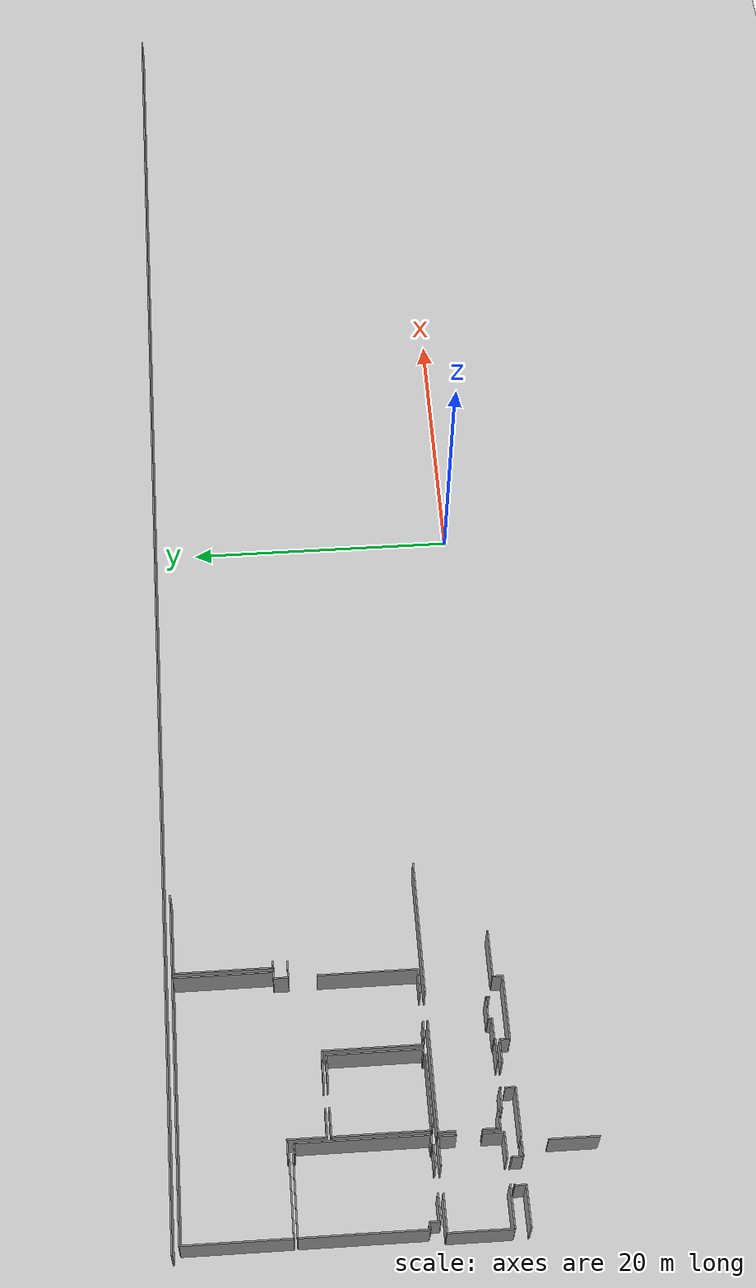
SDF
<sdf version="1.6">
 <world name="default">
  <model name="ground_plane">
   <static>1</static>
   <link name="link">
    <collision name="collision">
     <geometry><plane><normal>0 0 1</normal><size>100 100</size></plane></geometry>
     <surface><friction><ode><mu>100</mu><mu2>50</mu2></ode></friction></surface>
    </collision>
    <visual name="visual">
     <cast_shadows>0</cast_shadows>
     <geometry><plane><normal>0 0 1</normal><size>100 100</size></plane></geometry>
     <material>
      <script><uri>file://media/materials/scripts/gazebo.material</uri><name>Gazebo/Grey</name></script>
     </material>
    </visual>
   </link>
  </model>
  <model name="50057023">
   <static>1</static>
   <link name="Wall_0">
    <collision name="Wall_0_Collision">
     <geometry><box><size>0.727358910242 0.1 2.5</size></box></geometry>
     <pose>0.363679455121 0 1.25 0 0 0</pose>
    </collision>
    <visual name="Wall_0_Visual">
     <pose>0.363679455121 0 1.25 0 0 0</pose>
     <geometry><box><size>0.727358910242 0.1 2.5</size></box></geometry>
     <material>
      <script><uri>file://media/materials/scripts/gazebo.material</uri><name>Gazebo/Grey</name></script>
      <ambient>1 1 1 1</ambient>
     </material>
    </visual>
    <pose>1.07209078615 -17.7010946504 0 0 0 1.57079632679</pose>
   </link>
   <link name="Wall_1">
    <collision name="Wall_1_Collision">
     <geometry><box><size>0.495932290604 0.1 2.5</size></box></geometry>
     <pose>0.247966145302 0 1.25 0 0 0</pose>
    </collision>
    <visual name="Wall_1_Visual">
     <pose>0.247966145302 0 1.25 0 0 0</pose>
     <geometry><box><size>0.495932290604 0.1 2.5</size></box></geometry>
     <material>
      <script><uri>file://media/materials/scripts/gazebo.material</uri><name>Gazebo/Grey</name></script>
      <ambient>1 1 1 1</ambient>
     </material>
    </visual>
    <pose>1.07209078615 -16.9737357402 0 0 0 3.14159265359</pose>
   </link>
   <link name="Wall_2">
    <collision name="Wall_2_Collision">
     <geometry><box><size>8.71259120503 0.1 2.5</size></box></geometry>
     <pose>4.35629560251 0 1.25 0 0 0</pose>
    </collision>
    <visual name="Wall_2_Visual">
     <pose>4.35629560251 0 1.25 0 0 0</pose>
     <geometry><box><size>8.71259120503 0.1 2.5</size></box></geometry>
     <material>
      <script><uri>file://media/materials/scripts/gazebo.material</uri><name>Gazebo/Grey</name></script>
      <ambient>1 1 1 1</ambient>
     </material>
    </visual>
    <pose>0.57615849555 -16.9737357402 0 0 0 1.57079632679</pose>
   </link>
   <link name="Wall_3">
    <collision name="Wall_3_Collision">
     <geometry><box><size>5.60645561134 0.1 2.5</size></box></geometry>
     <pose>2.80322780567 0 1.25 0 0 0</pose>
    </collision>
    <visual name="Wall_3_Visual">
     <pose>2.80322780567 0 1.25 0 0 0</pose>
     <geometry><box><size>5.60645561134 0.1 2.5</size></box></geometry>
     <material>
      <script><uri>file://media/materials/scripts/gazebo.material</uri><name>Gazebo/Grey</name></script>
      <ambient>1 1 1 1</ambient>
     </material>
    </visual>
    <pose>0.57615849555 -8.26114453518 0 0 0 0.0</pose>
   </link>
   <link name="Wall_4">
    <collision name="Wall_4_Collision">
     <geometry><box><size>0.108362409524 0.1 2.5</size></box></geometry>
     <pose>0.0541812047619 0 1.25 0 0 0</pose>
    </collision>
    <visual name="Wall_4_Visual">
     <pose>0.0541812047619 0 1.25 0 0 0</pose>
     <geometry><box><size>0.108362409524 0.1 2.5</size></box></geometry>
     <material>
      <script><uri>file://media/materials/scripts/gazebo.material</uri><name>Gazebo/Grey</name></script>
      <ambient>1 1 1 1</ambient>
     </material>
    </visual>
    <pose>6.18261410688 -8.26114453518 0 0 0 -1.57079632679</pose>
   </link>
   <link name="Wall_5">
    <collision name="Wall_5_Collision">
     <geometry><box><size>0.725077596357 0.1 2.5</size></box></geometry>
     <pose>0.362538798178 0 1.25 0 0 0</pose>
    </collision>
    <visual name="Wall_5_Visual">
     <pose>0.362538798178 0 1.25 0 0 0</pose>
     <geometry><box><size>0.725077596357 0.1 2.5</size></box></geometry>
     <material>
      <script><uri>file://media/materials/scripts/gazebo.material</uri><name>Gazebo/Grey</name></script>
      <ambient>1 1 1 1</ambient>
     </material>
    </visual>
    <pose>6.18261410688 -8.3695069447 0 0 0 0.0</pose>
   </link>
   <link name="Wall_6">
    <collision name="Wall_6_Collision">
     <geometry><box><size>9.20839675597 0.1 2.5</size></box></geometry>
     <pose>4.60419837799 0 1.25 0 0 0</pose>
    </collision>
    <visual name="Wall_6_Visual">
     <pose>4.60419837799 0 1.25 0 0 0</pose>
     <geometry><box><size>9.20839675597 0.1 2.5</size></box></geometry>
     <material>
      <script><uri>file://media/materials/scripts/gazebo.material</uri><name>Gazebo/Grey</name></script>
      <ambient>1 1 1 1</ambient>
     </material>
    </visual>
    <pose>6.90769170324 -8.3695069447 0 0 0 -1.57079632679</pose>
   </link>
   <link name="Wall_7">
    <collision name="Wall_7_Collision">
     <geometry><box><size>0.708347961202 0.1 2.5</size></box></geometry>
     <pose>0.354173980601 0 1.25 0 0 0</pose>
    </collision>
    <visual name="Wall_7_Visual">
     <pose>0.354173980601 0 1.25 0 0 0</pose>
     <geometry><box><size>0.708347961202 0.1 2.5</size></box></geometry>
     <material>
      <script><uri>file://media/materials/scripts/gazebo.material</uri><name>Gazebo/Grey</name></script>
      <ambient>1 1 1 1</ambient>
     </material>
    </visual>
    <pose>6.90769170324 -17.5779037007 0 0 0 3.14159265359</pose>
   </link>
   <link name="Wall_8">
    <collision name="Wall_8_Collision">
     <geometry><box><size>0.108362409524 0.1 2.5</size></box></geometry>
     <pose>0.0541812047619 0 1.25 0 0 0</pose>
    </collision>
    <visual name="Wall_8_Visual">
     <pose>0.0541812047619 0 1.25 0 0 0</pose>
     <geometry><box><size>0.108362409524 0.1 2.5</size></box></geometry>
     <material>
      <script><uri>file://media/materials/scripts/gazebo.material</uri><name>Gazebo/Grey</name></script>
      <ambient>1 1 1 1</ambient>
     </material>
    </visual>
    <pose>6.19934374204 -17.5779037007 0 0 0 -1.57079632679</pose>
   </link>
   <link name="Wall_9">
    <collision name="Wall_9_Collision">
     <geometry><box><size>1.47499616613 0.1 2.5</size></box></geometry>
     <pose>0.737498083063 0 1.25 0 0 0</pose>
    </collision>
    <visual name="Wall_9_Visual">
     <pose>0.737498083063 0 1.25 0 0 0</pose>
     <geometry><box><size>1.47499616613 0.1 2.5</size></box></geometry>
     <material>
      <script><uri>file://media/materials/scripts/gazebo.material</uri><name>Gazebo/Grey</name></script>
      <ambient>1 1 1 1</ambient>
     </material>
    </visual>
    <pose>6.19934374204 -17.6862661102 0 0 0 3.14159265359</pose>
   </link>
   <link name="Wall_10">
    <collision name="Wall_10_Collision">
     <geometry><box><size>1.90115273435 0.1 2.5</size></box></geometry>
     <pose>0.950576367176 0 1.25 0 0 0</pose>
    </collision>
    <visual name="Wall_10_Visual">
     <pose>0.950576367176 0 1.25 0 0 0</pose>
     <geometry><box><size>1.90115273435 0.1 2.5</size></box></geometry>
     <material>
      <script><uri>file://media/materials/scripts/gazebo.material</uri><name>Gazebo/Grey</name></script>
      <ambient>1 1 1 1</ambient>
     </material>
    </visual>
    <pose>2.97318569008 -17.6862661102 0 0 0 -3.13379281177</pose>
   </link>
   <link name="Wall_11">
    <collision name="Wall_11_Collision">
     <geometry><box><size>6.70021887939 0.1 2.5</size></box></geometry>
     <pose>3.3501094397 0 1.25 0 0 0</pose>
    </collision>
    <visual name="Wall_11_Visual">
     <pose>3.3501094397 0 1.25 0 0 0</pose>
     <geometry><box><size>6.70021887939 0.1 2.5</size></box></geometry>
     <material>
      <script><uri>file://media/materials/scripts/gazebo.material</uri><name>Gazebo/Grey</name></script>
      <ambient>1 1 1 1</ambient>
     </material>
    </visual>
    <pose>7.1862654765 -17.598689005 0 0 0 1.57079632679</pose>
   </link>
   <link name="Wall_12">
    <collision name="Wall_12_Collision">
     <geometry><box><size>2.01123166869 0.1 2.5</size></box></geometry>
     <pose>1.00561583435 0 1.25 0 0 0</pose>
    </collision>
    <visual name="Wall_12_Visual">
     <pose>1.00561583435 0 1.25 0 0 0</pose>
     <geometry><box><size>2.01123166869 0.1 2.5</size></box></geometry>
     <material>
      <script><uri>file://media/materials/scripts/gazebo.material</uri><name>Gazebo/Grey</name></script>
      <ambient>1 1 1 1</ambient>
     </material>
    </visual>
    <pose>7.1862654765 -10.8984701256 0 0 0 0.0</pose>
   </link>
   <link name="Wall_13">
    <collision name="Wall_13_Collision">
     <geometry><box><size>1.97219585333 0.1 2.5</size></box></geometry>
     <pose>0.986097926666 0 1.25 0 0 0</pose>
    </collision>
    <visual name="Wall_13_Visual">
     <pose>0.986097926666 0 1.25 0 0 0</pose>
     <geometry><box><size>1.97219585333 0.1 2.5</size></box></geometry>
     <material>
      <script><uri>file://media/materials/scripts/gazebo.material</uri><name>Gazebo/Grey</name></script>
      <ambient>1 1 1 1</ambient>
     </material>
    </visual>
    <pose>10.9546157951 -10.8984701256 0 0 0 0.0</pose>
   </link>
   <link name="Wall_14">
    <collision name="Wall_14_Collision">
     <geometry><box><size>6.6829822856 0.1 2.5</size></box></geometry>
     <pose>3.3414911428 0 1.25 0 0 0</pose>
    </collision>
    <visual name="Wall_14_Visual">
     <pose>3.3414911428 0 1.25 0 0 0</pose>
     <geometry><box><size>6.6829822856 0.1 2.5</size></box></geometry>
     <material>
      <script><uri>file://media/materials/scripts/gazebo.material</uri><name>Gazebo/Grey</name></script>
      <ambient>1 1 1 1</ambient>
     </material>
    </visual>
    <pose>12.9268116484 -10.8984701256 0 0 0 -1.57079632679</pose>
   </link>
   <link name="Wall_15">
    <collision name="Wall_15_Collision">
     <geometry><box><size>0.442321414313 0.1 2.5</size></box></geometry>
     <pose>0.221160707157 0 1.25 0 0 0</pose>
    </collision>
    <visual name="Wall_15_Visual">
     <pose>0.221160707157 0 1.25 0 0 0</pose>
     <geometry><box><size>0.442321414313 0.1 2.5</size></box></geometry>
     <material>
      <script><uri>file://media/materials/scripts/gazebo.material</uri><name>Gazebo/Grey</name></script>
      <ambient>1 1 1 1</ambient>
     </material>
    </visual>
    <pose>12.9268116484 -17.5814524112 0 0 0 3.14159265359</pose>
   </link>
   <link name="Wall_16">
    <collision name="Wall_16_Collision">
     <geometry><box><size>0.171605499994 0.1 2.5</size></box></geometry>
     <pose>0.0858027499971 0 1.25 0 0 0</pose>
    </collision>
    <visual name="Wall_16_Visual">
     <pose>0.0858027499971 0 1.25 0 0 0</pose>
     <geometry><box><size>0.171605499994 0.1 2.5</size></box></geometry>
     <material>
      <script><uri>file://media/materials/scripts/gazebo.material</uri><name>Gazebo/Grey</name></script>
      <ambient>1 1 1 1</ambient>
     </material>
    </visual>
    <pose>12.4844902341 -17.5814524112 0 0 0 -1.57079632679</pose>
   </link>
   <link name="Wall_17">
    <collision name="Wall_17_Collision">
     <geometry><box><size>5.02066490161 0.1 2.5</size></box></geometry>
     <pose>2.5103324508 0 1.25 0 0 0</pose>
    </collision>
    <visual name="Wall_17_Visual">
     <pose>2.5103324508 0 1.25 0 0 0</pose>
     <geometry><box><size>5.02066490161 0.1 2.5</size></box></geometry>
     <material>
      <script><uri>file://media/materials/scripts/gazebo.material</uri><name>Gazebo/Grey</name></script>
      <ambient>1 1 1 1</ambient>
     </material>
    </visual>
    <pose>12.4844902341 -17.7530579112 0 0 0 3.14159265359</pose>
   </link>
   <link name="Wall_18">
    <collision name="Wall_18_Collision">
     <geometry><box><size>0.15018649741 0.1 2.5</size></box></geometry>
     <pose>0.075093248705 0 1.25 0 0 0</pose>
    </collision>
    <visual name="Wall_18_Visual">
     <pose>0.075093248705 0 1.25 0 0 0</pose>
     <geometry><box><size>0.15018649741 0.1 2.5</size></box></geometry>
     <material>
      <script><uri>file://media/materials/scripts/gazebo.material</uri><name>Gazebo/Grey</name></script>
      <ambient>1 1 1 1</ambient>
     </material>
    </visual>
    <pose>7.46382533247 -17.7530579112 0 0 0 1.57079632679</pose>
   </link>
   <link name="Wall_19">
    <collision name="Wall_19_Collision">
     <geometry><box><size>0.277591365484 0.1 2.5</size></box></geometry>
     <pose>0.138795682742 0 1.25 0 0 0</pose>
    </collision>
    <visual name="Wall_19_Visual">
     <pose>0.138795682742 0 1.25 0 0 0</pose>
     <geometry><box><size>0.277591365484 0.1 2.5</size></box></geometry>
     <material>
      <script><uri>file://media/materials/scripts/gazebo.material</uri><name>Gazebo/Grey</name></script>
      <ambient>1 1 1 1</ambient>
     </material>
    </visual>
    <pose>7.46382533247 -17.6028714137 0 0 0 3.12652530077</pose>
   </link>
   <link name="Wall_20">
    <collision name="Wall_20_Collision">
     <geometry><box><size>7.51338053963 0.1 2.5</size></box></geometry>
     <pose>3.75669026982 0 1.25 0 0 0</pose>
    </collision>
    <visual name="Wall_20_Visual">
     <pose>3.75669026982 0 1.25 0 0 0</pose>
     <geometry><box><size>7.51338053963 0.1 2.5</size></box></geometry>
     <material>
      <script><uri>file://media/materials/scripts/gazebo.material</uri><name>Gazebo/Grey</name></script>
      <ambient>1 1 1 1</ambient>
     </material>
    </visual>
    <pose>0.570201731517 -8.01096044582 0 0 0 1.57079632679</pose>
   </link>
   <link name="Wall_21">
    <collision name="Wall_21_Collision">
     <geometry><box><size>18.6421366279 0.1 2.5</size></box></geometry>
     <pose>9.32106831394 0 1.25 0 0 0</pose>
    </collision>
    <visual name="Wall_21_Visual">
     <pose>9.32106831394 0 1.25 0 0 0</pose>
     <geometry><box><size>18.6421366279 0.1 2.5</size></box></geometry>
     <material>
      <script><uri>file://media/materials/scripts/gazebo.material</uri><name>Gazebo/Grey</name></script>
      <ambient>1 1 1 1</ambient>
     </material>
    </visual>
    <pose>0.570201731517 -0.497579906187 0 0 0 0.0</pose>
   </link>
   <link name="Wall_22">
    <collision name="Wall_22_Collision">
     <geometry><box><size>7.08639462421 0.1 2.5</size></box></geometry>
     <pose>3.54319731211 0 1.25 0 0 0</pose>
    </collision>
    <visual name="Wall_22_Visual">
     <pose>3.54319731211 0 1.25 0 0 0</pose>
     <geometry><box><size>7.08639462421 0.1 2.5</size></box></geometry>
     <material>
      <script><uri>file://media/materials/scripts/gazebo.material</uri><name>Gazebo/Grey</name></script>
      <ambient>1 1 1 1</ambient>
     </material>
    </visual>
    <pose>19.2123383594 -0.497579906187 0 0 0 -1.57079632679</pose>
   </link>
   <link name="Wall_23">
    <collision name="Wall_23_Collision">
     <geometry><box><size>0.473879589718 0.1 2.5</size></box></geometry>
     <pose>0.236939794859 0 1.25 0 0 0</pose>
    </collision>
    <visual name="Wall_23_Visual">
     <pose>0.236939794859 0 1.25 0 0 0</pose>
     <geometry><box><size>0.473879589718 0.1 2.5</size></box></geometry>
     <material>
      <script><uri>file://media/materials/scripts/gazebo.material</uri><name>Gazebo/Grey</name></script>
      <ambient>1 1 1 1</ambient>
     </material>
    </visual>
    <pose>19.2123383594 -7.5839745304 0 0 0 3.14159265359</pose>
   </link>
   <link name="Wall_24">
    <collision name="Wall_24_Collision">
     <geometry><box><size>1.02494363254 0.1 2.5</size></box></geometry>
     <pose>0.512471816268 0 1.25 0 0 0</pose>
    </collision>
    <visual name="Wall_24_Visual">
     <pose>0.512471816268 0 1.25 0 0 0</pose>
     <geometry><box><size>1.02494363254 0.1 2.5</size></box></geometry>
     <material>
      <script><uri>file://media/materials/scripts/gazebo.material</uri><name>Gazebo/Grey</name></script>
      <ambient>1 1 1 1</ambient>
     </material>
    </visual>
    <pose>18.7384587697 -7.5839745304 0 0 0 -1.57079632679</pose>
   </link>
   <link name="Wall_25">
    <collision name="Wall_25_Collision">
     <geometry><box><size>1.23431755129 0.1 2.5</size></box></geometry>
     <pose>0.617158775644 0 1.25 0 0 0</pose>
    </collision>
    <visual name="Wall_25_Visual">
     <pose>0.617158775644 0 1.25 0 0 0</pose>
     <geometry><box><size>1.23431755129 0.1 2.5</size></box></geometry>
     <material>
      <script><uri>file://media/materials/scripts/gazebo.material</uri><name>Gazebo/Grey</name></script>
      <ambient>1 1 1 1</ambient>
     </material>
    </visual>
    <pose>18.7384587697 -8.60891816293 0 0 0 0.0</pose>
   </link>
   <link name="Wall_31">
    <collision name="Wall_31_Collision">
     <geometry><box><size>7.12238868772 0.1 2.5</size></box></geometry>
     <pose>3.56119434386 0 1.25 0 0 0</pose>
    </collision>
    <visual name="Wall_31_Visual">
     <pose>3.56119434386 0 1.25 0 0 0</pose>
     <geometry><box><size>7.12238868772 0.1 2.5</size></box></geometry>
     <material>
      <script><uri>file://media/materials/scripts/gazebo.material</uri><name>Gazebo/Grey</name></script>
      <ambient>1 1 1 1</ambient>
     </material>
    </visual>
    <pose>18.765961276 -10.6068421673 0 0 0 -1.57079632679</pose>
   </link>
   <link name="Wall_32">
    <collision name="Wall_32_Collision">
     <geometry><box><size>1.70262059596 0.1 2.5</size></box></geometry>
     <pose>0.851310297978 0 1.25 0 0 0</pose>
    </collision>
    <visual name="Wall_32_Visual">
     <pose>0.851310297978 0 1.25 0 0 0</pose>
     <geometry><box><size>1.70262059596 0.1 2.5</size></box></geometry>
     <material>
      <script><uri>file://media/materials/scripts/gazebo.material</uri><name>Gazebo/Grey</name></script>
      <ambient>1 1 1 1</ambient>
     </material>
    </visual>
    <pose>18.765961276 -17.729230855 0 0 0 3.14159265359</pose>
   </link>
   <link name="Wall_33">
    <collision name="Wall_33_Collision">
     <geometry><box><size>1.21974249036 0.1 2.5</size></box></geometry>
     <pose>0.609871245179 0 1.25 0 0 0</pose>
    </collision>
    <visual name="Wall_33_Visual">
     <pose>0.609871245179 0 1.25 0 0 0</pose>
     <geometry><box><size>1.21974249036 0.1 2.5</size></box></geometry>
     <material>
      <script><uri>file://media/materials/scripts/gazebo.material</uri><name>Gazebo/Grey</name></script>
      <ambient>1 1 1 1</ambient>
     </material>
    </visual>
    <pose>14.9573077454 -17.729230855 0 0 0 3.14159265359</pose>
   </link>
   <link name="Wall_34">
    <collision name="Wall_34_Collision">
     <geometry><box><size>0.128640755166 0.1 2.5</size></box></geometry>
     <pose>0.0643203775828 0 1.25 0 0 0</pose>
    </collision>
    <visual name="Wall_34_Visual">
     <pose>0.0643203775828 0 1.25 0 0 0</pose>
     <geometry><box><size>0.128640755166 0.1 2.5</size></box></geometry>
     <material>
      <script><uri>file://media/materials/scripts/gazebo.material</uri><name>Gazebo/Grey</name></script>
      <ambient>1 1 1 1</ambient>
     </material>
    </visual>
    <pose>13.7375652551 -17.729230855 0 0 0 1.57079632679</pose>
   </link>
   <link name="Wall_35">
    <collision name="Wall_35_Collision">
     <geometry><box><size>0.504930806482 0.1 2.5</size></box></geometry>
     <pose>0.252465403241 0 1.25 0 0 0</pose>
    </collision>
    <visual name="Wall_35_Visual">
     <pose>0.252465403241 0 1.25 0 0 0</pose>
     <geometry><box><size>0.504930806482 0.1 2.5</size></box></geometry>
     <material>
      <script><uri>file://media/materials/scripts/gazebo.material</uri><name>Gazebo/Grey</name></script>
      <ambient>1 1 1 1</ambient>
     </material>
    </visual>
    <pose>13.7375652551 -17.6005900999 0 0 0 3.14159265359</pose>
   </link>
   <link name="Wall_36">
    <collision name="Wall_36_Collision">
     <geometry><box><size>6.98107396653 0.1 2.5</size></box></geometry>
     <pose>3.49053698327 0 1.25 0 0 0</pose>
    </collision>
    <visual name="Wall_36_Visual">
     <pose>3.49053698327 0 1.25 0 0 0</pose>
     <geometry><box><size>6.98107396653 0.1 2.5</size></box></geometry>
     <material>
      <script><uri>file://media/materials/scripts/gazebo.material</uri><name>Gazebo/Grey</name></script>
      <ambient>1 1 1 1</ambient>
     </material>
    </visual>
    <pose>13.2326344486 -17.6005900999 0 0 0 1.57079632679</pose>
   </link>
   <link name="Wall_37">
    <collision name="Wall_37_Collision">
     <geometry><box><size>2.28156736403 0.1 2.5</size></box></geometry>
     <pose>1.14078368202 0 1.25 0 0 0</pose>
    </collision>
    <visual name="Wall_37_Visual">
     <pose>1.14078368202 0 1.25 0 0 0</pose>
     <geometry><box><size>2.28156736403 0.1 2.5</size></box></geometry>
     <material>
      <script><uri>file://media/materials/scripts/gazebo.material</uri><name>Gazebo/Grey</name></script>
      <ambient>1 1 1 1</ambient>
     </material>
    </visual>
    <pose>13.2326344486 -10.6195161333 0 0 0 3.14159265359</pose>
   </link>
   <link name="Wall_38">
    <collision name="Wall_38_Collision">
     <geometry><box><size>2.02897522113 0.1 2.5</size></box></geometry>
     <pose>1.01448761056 0 1.25 0 0 0</pose>
    </collision>
    <visual name="Wall_38_Visual">
     <pose>1.01448761056 0 1.25 0 0 0</pose>
     <geometry><box><size>2.02897522113 0.1 2.5</size></box></geometry>
     <material>
      <script><uri>file://media/materials/scripts/gazebo.material</uri><name>Gazebo/Grey</name></script>
      <ambient>1 1 1 1</ambient>
     </material>
    </visual>
    <pose>9.20915719393 -10.6195161333 0 0 0 3.14159265359</pose>
   </link>
   <link name="Wall_39">
    <collision name="Wall_39_Collision">
     <geometry><box><size>2.71374960552 0.1 2.5</size></box></geometry>
     <pose>1.35687480276 0 1.25 0 0 0</pose>
    </collision>
    <visual name="Wall_39_Visual">
     <pose>1.35687480276 0 1.25 0 0 0</pose>
     <geometry><box><size>2.71374960552 0.1 2.5</size></box></geometry>
     <material>
      <script><uri>file://media/materials/scripts/gazebo.material</uri><name>Gazebo/Grey</name></script>
      <ambient>1 1 1 1</ambient>
     </material>
    </visual>
    <pose>7.1801819728 -10.6195161333 0 0 0 1.57079632679</pose>
   </link>
   <link name="Wall_40">
    <collision name="Wall_40_Collision">
     <geometry><box><size>0.982739325669 0.1 2.5</size></box></geometry>
     <pose>0.491369662834 0 1.25 0 0 0</pose>
    </collision>
    <visual name="Wall_40_Visual">
     <pose>0.491369662834 0 1.25 0 0 0</pose>
     <geometry><box><size>0.982739325669 0.1 2.5</size></box></geometry>
     <material>
      <script><uri>file://media/materials/scripts/gazebo.material</uri><name>Gazebo/Grey</name></script>
      <ambient>1 1 1 1</ambient>
     </material>
    </visual>
    <pose>7.1801819728 -7.9057665278 0 0 0 3.14159265359</pose>
   </link>
   <link name="Wall_41">
    <collision name="Wall_41_Collision">
     <geometry><box><size>0.0941675675744 0.1 2.5</size></box></geometry>
     <pose>0.0470837837872 0 1.25 0 0 0</pose>
    </collision>
    <visual name="Wall_41_Visual">
     <pose>0.0470837837872 0 1.25 0 0 0</pose>
     <geometry><box><size>0.0941675675744 0.1 2.5</size></box></geometry>
     <material>
      <script><uri>file://media/materials/scripts/gazebo.material</uri><name>Gazebo/Grey</name></script>
      <ambient>1 1 1 1</ambient>
     </material>
    </visual>
    <pose>6.19744264714 -7.9057665278 0 0 0 -1.57079632679</pose>
   </link>
   <link name="Wall_42">
    <collision name="Wall_42_Collision">
     <geometry><box><size>5.62725171845 0.1 2.5</size></box></geometry>
     <pose>2.81362585923 0 1.25 0 0 0</pose>
    </collision>
    <visual name="Wall_42_Visual">
     <pose>2.81362585923 0 1.25 0 0 0</pose>
     <geometry><box><size>5.62725171845 0.1 2.5</size></box></geometry>
     <material>
      <script><uri>file://media/materials/scripts/gazebo.material</uri><name>Gazebo/Grey</name></script>
      <ambient>1 1 1 1</ambient>
     </material>
    </visual>
    <pose>6.19744264714 -7.99993409538 0 0 0 -3.13963319664</pose>
   </link>
   <link name="Wall_43">
    <collision name="Wall_43_Collision">
     <geometry><box><size>7.09197116926 0.1 2.5</size></box></geometry>
     <pose>3.54598558463 0 1.25 0 0 0</pose>
    </collision>
    <visual name="Wall_43_Visual">
     <pose>3.54598558463 0 1.25 0 0 0</pose>
     <geometry><box><size>7.09197116926 0.1 2.5</size></box></geometry>
     <material>
      <script><uri>file://media/materials/scripts/gazebo.material</uri><name>Gazebo/Grey</name></script>
      <ambient>1 1 1 1</ambient>
     </material>
    </visual>
    <pose>19.5171472423 -7.59487414118 0 0 0 1.57079632679</pose>
   </link>
   <link name="Wall_44">
    <collision name="Wall_44_Collision">
     <geometry><box><size>5.98147826605 0.1 2.5</size></box></geometry>
     <pose>2.99073913302 0 1.25 0 0 0</pose>
    </collision>
    <visual name="Wall_44_Visual">
     <pose>2.99073913302 0 1.25 0 0 0</pose>
     <geometry><box><size>5.98147826605 0.1 2.5</size></box></geometry>
     <material>
      <script><uri>file://media/materials/scripts/gazebo.material</uri><name>Gazebo/Grey</name></script>
      <ambient>1 1 1 1</ambient>
     </material>
    </visual>
    <pose>19.5171472423 -0.502902971918 0 0 0 0.0</pose>
   </link>
   <link name="Wall_47">
    <collision name="Wall_47_Collision">
     <geometry><box><size>0.490971580892 0.1 2.5</size></box></geometry>
     <pose>0.245485790446 0 1.25 0 0 0</pose>
    </collision>
    <visual name="Wall_47_Visual">
     <pose>0.245485790446 0 1.25 0 0 0</pose>
     <geometry><box><size>0.490971580892 0.1 2.5</size></box></geometry>
     <material>
      <script><uri>file://media/materials/scripts/gazebo.material</uri><name>Gazebo/Grey</name></script>
      <ambient>1 1 1 1</ambient>
     </material>
    </visual>
    <pose>20.0078832069 -7.57966538195 0 0 0 -3.11061083473</pose>
   </link>
   <link name="Wall_110">
    <collision name="Wall_110_Collision">
     <geometry><box><size>1.23431755129 0.1 2.5</size></box></geometry>
     <pose>0.617158775644 0 1.25 0 0 0</pose>
    </collision>
    <visual name="Wall_110_Visual">
     <pose>0.617158775644 0 1.25 0 0 0</pose>
     <geometry><box><size>1.23431755129 0.1 2.5</size></box></geometry>
     <material>
      <script><uri>file://media/materials/scripts/gazebo.material</uri><name>Gazebo/Grey</name></script>
      <ambient>1 1 1 1</ambient>
     </material>
    </visual>
    <pose>7.04533097429 -22.2968014712 0 0 0 1.57079632679</pose>
   </link>
   <link name="Wall_111">
    <collision name="Wall_111_Collision">
     <geometry><box><size>1.24166845158 0.1 2.5</size></box></geometry>
     <pose>0.620834225792 0 1.25 0 0 0</pose>
    </collision>
    <visual name="Wall_111_Visual">
     <pose>0.620834225792 0 1.25 0 0 0</pose>
     <geometry><box><size>1.24166845158 0.1 2.5</size></box></geometry>
     <material>
      <script><uri>file://media/materials/scripts/gazebo.material</uri><name>Gazebo/Grey</name></script>
      <ambient>1 1 1 1</ambient>
     </material>
    </visual>
    <pose>7.04533097429 -19.3028304768 0 0 0 1.57079632679</pose>
   </link>
   <link name="Wall_112">
    <collision name="Wall_112_Collision">
     <geometry><box><size>7.89816214819 0.1 2.5</size></box></geometry>
     <pose>3.94908107409 0 1.25 0 0 0</pose>
    </collision>
    <visual name="Wall_112_Visual">
     <pose>3.94908107409 0 1.25 0 0 0</pose>
     <geometry><box><size>7.89816214819 0.1 2.5</size></box></geometry>
     <material>
      <script><uri>file://media/materials/scripts/gazebo.material</uri><name>Gazebo/Grey</name></script>
      <ambient>1 1 1 1</ambient>
     </material>
    </visual>
    <pose>7.04533097429 -18.0611620252 0 0 0 0.0</pose>
   </link>
   <link name="Wall_113">
    <collision name="Wall_113_Collision">
     <geometry><box><size>9.84995291622 0.1 2.5</size></box></geometry>
     <pose>4.92497645811 0 1.25 0 0 0</pose>
    </collision>
    <visual name="Wall_113_Visual">
     <pose>4.92497645811 0 1.25 0 0 0</pose>
     <geometry><box><size>9.84995291622 0.1 2.5</size></box></geometry>
     <material>
      <script><uri>file://media/materials/scripts/gazebo.material</uri><name>Gazebo/Grey</name></script>
      <ambient>1 1 1 1</ambient>
     </material>
    </visual>
    <pose>17.0660022129 -18.0611620252 0 0 0 0.0</pose>
   </link>
   <link name="Wall_161">
    <collision name="Wall_161_Collision">
     <geometry><box><size>0.26615328655 0.1 2.5</size></box></geometry>
     <pose>0.133076643275 0 1.25 0 0 0</pose>
    </collision>
    <visual name="Wall_161_Visual">
     <pose>0.133076643275 0 1.25 0 0 0</pose>
     <geometry><box><size>0.26615328655 0.1 2.5</size></box></geometry>
     <material>
      <script><uri>file://media/materials/scripts/gazebo.material</uri><name>Gazebo/Grey</name></script>
      <ambient>1 1 1 1</ambient>
     </material>
    </visual>
    <pose>16.3965633274 -22.5216376285 0 0 0 1.57079632679</pose>
   </link>
   <link name="Wall_162">
    <collision name="Wall_162_Collision">
     <geometry><box><size>1.60959368532 0.1 2.5</size></box></geometry>
     <pose>0.804796842662 0 1.25 0 0 0</pose>
    </collision>
    <visual name="Wall_162_Visual">
     <pose>0.804796842662 0 1.25 0 0 0</pose>
     <geometry><box><size>1.60959368532 0.1 2.5</size></box></geometry>
     <material>
      <script><uri>file://media/materials/scripts/gazebo.material</uri><name>Gazebo/Grey</name></script>
      <ambient>1 1 1 1</ambient>
     </material>
    </visual>
    <pose>16.3965633274 -22.2554843419 0 0 0 3.14159265359</pose>
   </link>
   <link name="Wall_163">
    <collision name="Wall_163_Collision">
     <geometry><box><size>0.26615328655 0.1 2.5</size></box></geometry>
     <pose>0.133076643275 0 1.25 0 0 0</pose>
    </collision>
    <visual name="Wall_163_Visual">
     <pose>0.133076643275 0 1.25 0 0 0</pose>
     <geometry><box><size>0.26615328655 0.1 2.5</size></box></geometry>
     <material>
      <script><uri>file://media/materials/scripts/gazebo.material</uri><name>Gazebo/Grey</name></script>
      <ambient>1 1 1 1</ambient>
     </material>
    </visual>
    <pose>14.786969642 -22.2554843419 0 0 0 -1.57079632679</pose>
   </link>
   <link name="Wall_164">
    <collision name="Wall_164_Collision">
     <geometry><box><size>1.48133314914 0.1 2.5</size></box></geometry>
     <pose>0.740666574569 0 1.25 0 0 0</pose>
    </collision>
    <visual name="Wall_164_Visual">
     <pose>0.740666574569 0 1.25 0 0 0</pose>
     <geometry><box><size>1.48133314914 0.1 2.5</size></box></geometry>
     <material>
      <script><uri>file://media/materials/scripts/gazebo.material</uri><name>Gazebo/Grey</name></script>
      <ambient>1 1 1 1</ambient>
     </material>
    </visual>
    <pose>14.786969642 -22.5216376285 0 0 0 3.14159265359</pose>
   </link>
   <link name="Wall_165">
    <collision name="Wall_165_Collision">
     <geometry><box><size>0.0695800734836 0.1 2.5</size></box></geometry>
     <pose>0.0347900367418 0 1.25 0 0 0</pose>
    </collision>
    <visual name="Wall_165_Visual">
     <pose>0.0347900367418 0 1.25 0 0 0</pose>
     <geometry><box><size>0.0695800734836 0.1 2.5</size></box></geometry>
     <material>
      <script><uri>file://media/materials/scripts/gazebo.material</uri><name>Gazebo/Grey</name></script>
      <ambient>1 1 1 1</ambient>
     </material>
    </visual>
    <pose>13.3056364929 -22.5216376285 0 0 0 -1.57079632679</pose>
   </link>
   <link name="Wall_166">
    <collision name="Wall_166_Collision">
     <geometry><box><size>1.6654858755 0.1 2.5</size></box></geometry>
     <pose>0.832742937749 0 1.25 0 0 0</pose>
    </collision>
    <visual name="Wall_166_Visual">
     <pose>0.832742937749 0 1.25 0 0 0</pose>
     <geometry><box><size>1.6654858755 0.1 2.5</size></box></geometry>
     <material>
      <script><uri>file://media/materials/scripts/gazebo.material</uri><name>Gazebo/Grey</name></script>
      <ambient>1 1 1 1</ambient>
     </material>
    </visual>
    <pose>13.3056364929 -22.591217702 0 0 0 3.14159265359</pose>
   </link>
   <link name="Wall_167">
    <collision name="Wall_167_Collision">
     <geometry><box><size>0.0508226037649 0.1 2.5</size></box></geometry>
     <pose>0.0254113018825 0 1.25 0 0 0</pose>
    </collision>
    <visual name="Wall_167_Visual">
     <pose>0.0254113018825 0 1.25 0 0 0</pose>
     <geometry><box><size>0.0508226037649 0.1 2.5</size></box></geometry>
     <material>
      <script><uri>file://media/materials/scripts/gazebo.material</uri><name>Gazebo/Grey</name></script>
      <ambient>1 1 1 1</ambient>
     </material>
    </visual>
    <pose>9.8787228191 -22.591217702 0 0 0 3.14159265359</pose>
   </link>
   <link name="Wall_168">
    <collision name="Wall_168_Collision">
     <geometry><box><size>0.0694533338234 0.1 2.5</size></box></geometry>
     <pose>0.0347266669117 0 1.25 0 0 0</pose>
    </collision>
    <visual name="Wall_168_Visual">
     <pose>0.0347266669117 0 1.25 0 0 0</pose>
     <geometry><box><size>0.0694533338234 0.1 2.5</size></box></geometry>
     <material>
      <script><uri>file://media/materials/scripts/gazebo.material</uri><name>Gazebo/Grey</name></script>
      <ambient>1 1 1 1</ambient>
     </material>
    </visual>
    <pose>9.82790021533 -22.591217702 0 0 0 1.57079632679</pose>
   </link>
   <link name="Wall_169">
    <collision name="Wall_169_Collision">
     <geometry><box><size>1.47816465763 0.1 2.5</size></box></geometry>
     <pose>0.739082328816 0 1.25 0 0 0</pose>
    </collision>
    <visual name="Wall_169_Visual">
     <pose>0.739082328816 0 1.25 0 0 0</pose>
     <geometry><box><size>1.47816465763 0.1 2.5</size></box></geometry>
     <material>
      <script><uri>file://media/materials/scripts/gazebo.material</uri><name>Gazebo/Grey</name></script>
      <ambient>1 1 1 1</ambient>
     </material>
    </visual>
    <pose>9.82790021533 -22.5217643682 0 0 0 3.14159265359</pose>
   </link>
   <link name="Wall_170">
    <collision name="Wall_170_Collision">
     <geometry><box><size>0.253732799844 0.1 2.5</size></box></geometry>
     <pose>0.126866399922 0 1.25 0 0 0</pose>
    </collision>
    <visual name="Wall_170_Visual">
     <pose>0.126866399922 0 1.25 0 0 0</pose>
     <geometry><box><size>0.253732799844 0.1 2.5</size></box></geometry>
     <material>
      <script><uri>file://media/materials/scripts/gazebo.material</uri><name>Gazebo/Grey</name></script>
      <ambient>1 1 1 1</ambient>
     </material>
    </visual>
    <pose>8.3497355577 -22.5217643682 0 0 0 1.57079632679</pose>
   </link>
   <link name="Wall_171">
    <collision name="Wall_171_Collision">
     <geometry><box><size>1.30472181883 0.1 2.5</size></box></geometry>
     <pose>0.652360909417 0 1.25 0 0 0</pose>
    </collision>
    <visual name="Wall_171_Visual">
     <pose>0.652360909417 0 1.25 0 0 0</pose>
     <geometry><box><size>1.30472181883 0.1 2.5</size></box></geometry>
     <material>
      <script><uri>file://media/materials/scripts/gazebo.material</uri><name>Gazebo/Grey</name></script>
      <ambient>1 1 1 1</ambient>
     </material>
    </visual>
    <pose>8.3497355577 -22.2680315683 0 0 0 -3.11954026324</pose>
   </link>
   <link name="Wall_172">
    <collision name="Wall_172_Collision">
     <geometry><box><size>4.48240156447 0.1 2.5</size></box></geometry>
     <pose>2.24120078224 0 1.25 0 0 0</pose>
    </collision>
    <visual name="Wall_172_Visual">
     <pose>2.24120078224 0 1.25 0 0 0</pose>
     <geometry><box><size>4.48240156447 0.1 2.5</size></box></geometry>
     <material>
      <script><uri>file://media/materials/scripts/gazebo.material</uri><name>Gazebo/Grey</name></script>
      <ambient>1 1 1 1</ambient>
     </material>
    </visual>
    <pose>0.274264624806 -22.5362126894 0 0 0 1.57079632679</pose>
   </link>
   <link name="Wall_173">
    <collision name="Wall_173_Collision">
     <geometry><box><size>2.64936585811 0.1 2.5</size></box></geometry>
     <pose>1.32468292905 0 1.25 0 0 0</pose>
    </collision>
    <visual name="Wall_173_Visual">
     <pose>1.32468292905 0 1.25 0 0 0</pose>
     <geometry><box><size>2.64936585811 0.1 2.5</size></box></geometry>
     <material>
      <script><uri>file://media/materials/scripts/gazebo.material</uri><name>Gazebo/Grey</name></script>
      <ambient>1 1 1 1</ambient>
     </material>
    </visual>
    <pose>0.274264624806 -18.053811125 0 0 0 0.0</pose>
   </link>
   <link name="Wall_174">
    <collision name="Wall_174_Collision">
     <geometry><box><size>2.05254879794 0.1 2.5</size></box></geometry>
     <pose>1.02627439897 0 1.25 0 0 0</pose>
    </collision>
    <visual name="Wall_174_Visual">
     <pose>1.02627439897 0 1.25 0 0 0</pose>
     <geometry><box><size>2.05254879794 0.1 2.5</size></box></geometry>
     <material>
      <script><uri>file://media/materials/scripts/gazebo.material</uri><name>Gazebo/Grey</name></script>
      <ambient>1 1 1 1</ambient>
     </material>
    </visual>
    <pose>4.72434757591 -18.053811125 0 0 0 0.0</pose>
   </link>
   <link name="Wall_175">
    <collision name="Wall_175_Collision">
     <geometry><box><size>1.23634538585 0.1 2.5</size></box></geometry>
     <pose>0.618172692926 0 1.25 0 0 0</pose>
    </collision>
    <visual name="Wall_175_Visual">
     <pose>0.618172692926 0 1.25 0 0 0</pose>
     <geometry><box><size>1.23634538585 0.1 2.5</size></box></geometry>
     <material>
      <script><uri>file://media/materials/scripts/gazebo.material</uri><name>Gazebo/Grey</name></script>
      <ambient>1 1 1 1</ambient>
     </material>
    </visual>
    <pose>6.77689637385 -18.053811125 0 0 0 -1.57079632679</pose>
   </link>
   <link name="Wall_176">
    <collision name="Wall_176_Collision">
     <geometry><box><size>1.47499616613 0.1 2.5</size></box></geometry>
     <pose>0.737498083063 0 1.25 0 0 0</pose>
    </collision>
    <visual name="Wall_176_Visual">
     <pose>0.737498083063 0 1.25 0 0 0</pose>
     <geometry><box><size>1.47499616613 0.1 2.5</size></box></geometry>
     <material>
      <script><uri>file://media/materials/scripts/gazebo.material</uri><name>Gazebo/Grey</name></script>
      <ambient>1 1 1 1</ambient>
     </material>
    </visual>
    <pose>6.77689637385 -21.0528517057 0 0 0 -1.57079632679</pose>
   </link>
   <link name="Wall_177">
    <collision name="Wall_177_Collision">
     <geometry><box><size>1.76928565725 0.1 2.5</size></box></geometry>
     <pose>0.884642828626 0 1.25 0 0 0</pose>
    </collision>
    <visual name="Wall_177_Visual">
     <pose>0.884642828626 0 1.25 0 0 0</pose>
     <geometry><box><size>1.76928565725 0.1 2.5</size></box></geometry>
     <material>
      <script><uri>file://media/materials/scripts/gazebo.material</uri><name>Gazebo/Grey</name></script>
      <ambient>1 1 1 1</ambient>
     </material>
    </visual>
    <pose>6.77689637385 -22.5278478719 0 0 0 3.14159265359</pose>
   </link>
   <link name="Wall_178">
    <collision name="Wall_178_Collision">
     <geometry><box><size>2.9487368001 0.1 2.5</size></box></geometry>
     <pose>1.47436840005 0 1.25 0 0 0</pose>
    </collision>
    <visual name="Wall_178_Visual">
     <pose>1.47436840005 0 1.25 0 0 0</pose>
     <geometry><box><size>2.9487368001 0.1 2.5</size></box></geometry>
     <material>
      <script><uri>file://media/materials/scripts/gazebo.material</uri><name>Gazebo/Grey</name></script>
      <ambient>1 1 1 1</ambient>
     </material>
    </visual>
    <pose>3.22298956045 -22.5278478719 0 0 0 -3.1387559037</pose>
   </link>
   <link name="Wall_180">
    <collision name="Wall_180_Collision">
     <geometry><box><size>2.87496245338 0.1 2.5</size></box></geometry>
     <pose>1.43748122669 0 1.25 0 0 0</pose>
    </collision>
    <visual name="Wall_180_Visual">
     <pose>1.43748122669 0 1.25 0 0 0</pose>
     <geometry><box><size>2.87496245338 0.1 2.5</size></box></geometry>
     <material>
      <script><uri>file://media/materials/scripts/gazebo.material</uri><name>Gazebo/Grey</name></script>
      <ambient>1 1 1 1</ambient>
     </material>
    </visual>
    <pose>0.242706449401 -23.6083034756 0 0 0 0.0</pose>
   </link>
   <link name="Wall_181">
    <collision name="Wall_181_Collision">
     <geometry><box><size>0.785785893622 0.1 2.5</size></box></geometry>
     <pose>0.392892946811 0 1.25 0 0 0</pose>
    </collision>
    <visual name="Wall_181_Visual">
     <pose>0.392892946811 0 1.25 0 0 0</pose>
     <geometry><box><size>0.785785893622 0.1 2.5</size></box></geometry>
     <material>
      <script><uri>file://media/materials/scripts/gazebo.material</uri><name>Gazebo/Grey</name></script>
      <ambient>1 1 1 1</ambient>
     </material>
    </visual>
    <pose>3.11766890278 -23.6083034756 0 0 0 1.57079632679</pose>
   </link>
   <link name="Wall_182">
    <collision name="Wall_182_Collision">
     <geometry><box><size>0.105447397338 0.1 2.5</size></box></geometry>
     <pose>0.0527236986689 0 1.25 0 0 0</pose>
    </collision>
    <visual name="Wall_182_Visual">
     <pose>0.0527236986689 0 1.25 0 0 0</pose>
     <geometry><box><size>0.105447397338 0.1 2.5</size></box></geometry>
     <material>
      <script><uri>file://media/materials/scripts/gazebo.material</uri><name>Gazebo/Grey</name></script>
      <ambient>1 1 1 1</ambient>
     </material>
    </visual>
    <pose>3.11766890278 -22.822517582 0 0 0 0.0</pose>
   </link>
   <link name="Wall_183">
    <collision name="Wall_183_Collision">
     <geometry><box><size>0.0660313629963 0.1 2.5</size></box></geometry>
     <pose>0.0330156814982 0 1.25 0 0 0</pose>
    </collision>
    <visual name="Wall_183_Visual">
     <pose>0.0330156814982 0 1.25 0 0 0</pose>
     <geometry><box><size>0.0660313629963 0.1 2.5</size></box></geometry>
     <material>
      <script><uri>file://media/materials/scripts/gazebo.material</uri><name>Gazebo/Grey</name></script>
      <ambient>1 1 1 1</ambient>
     </material>
    </visual>
    <pose>4.97351774799 -22.822517582 0 0 0 0.0</pose>
   </link>
   <link name="Wall_184">
    <collision name="Wall_184_Collision">
     <geometry><box><size>0.785785893622 0.1 2.5</size></box></geometry>
     <pose>0.392892946811 0 1.25 0 0 0</pose>
    </collision>
    <visual name="Wall_184_Visual">
     <pose>0.392892946811 0 1.25 0 0 0</pose>
     <geometry><box><size>0.785785893622 0.1 2.5</size></box></geometry>
     <material>
      <script><uri>file://media/materials/scripts/gazebo.material</uri><name>Gazebo/Grey</name></script>
      <ambient>1 1 1 1</ambient>
     </material>
    </visual>
    <pose>5.03954911098 -22.822517582 0 0 0 -1.57079632679</pose>
   </link>
   <link name="Wall_185">
    <collision name="Wall_185_Collision">
     <geometry><box><size>1.04699633342 0.1 2.5</size></box></geometry>
     <pose>0.523498166711 0 1.25 0 0 0</pose>
    </collision>
    <visual name="Wall_185_Visual">
     <pose>0.523498166711 0 1.25 0 0 0</pose>
     <geometry><box><size>1.04699633342 0.1 2.5</size></box></geometry>
     <material>
      <script><uri>file://media/materials/scripts/gazebo.material</uri><name>Gazebo/Grey</name></script>
      <ambient>1 1 1 1</ambient>
     </material>
    </visual>
    <pose>5.03954911098 -23.6083034756 0 0 0 0.0</pose>
   </link>
   <link name="Wall_186">
    <collision name="Wall_186_Collision">
     <geometry><box><size>3.49357873511 0.1 2.5</size></box></geometry>
     <pose>1.74678936756 0 1.25 0 0 0</pose>
    </collision>
    <visual name="Wall_186_Visual">
     <pose>1.74678936756 0 1.25 0 0 0</pose>
     <geometry><box><size>3.49357873511 0.1 2.5</size></box></geometry>
     <material>
      <script><uri>file://media/materials/scripts/gazebo.material</uri><name>Gazebo/Grey</name></script>
      <ambient>1 1 1 1</ambient>
     </material>
    </visual>
    <pose>6.08654544441 -25.4377904715 0 0 0 -1.57079632679</pose>
   </link>
   <link name="Wall_221">
    <collision name="Wall_221_Collision">
     <geometry><box><size>3.43794002426 0.1 2.5</size></box></geometry>
     <pose>1.71897001213 0 1.25 0 0 0</pose>
    </collision>
    <visual name="Wall_221_Visual">
     <pose>1.71897001213 0 1.25 0 0 0</pose>
     <geometry><box><size>3.43794002426 0.1 2.5</size></box></geometry>
     <material>
      <script><uri>file://media/materials/scripts/gazebo.material</uri><name>Gazebo/Grey</name></script>
      <ambient>1 1 1 1</ambient>
     </material>
    </visual>
    <pose>6.39769131035 -23.6202170036 0 0 0 0.0</pose>
   </link>
   <link name="Wall_222">
    <collision name="Wall_222_Collision">
     <geometry><box><size>0.730654141409 0.1 2.5</size></box></geometry>
     <pose>0.365327070704 0 1.25 0 0 0</pose>
    </collision>
    <visual name="Wall_222_Visual">
     <pose>0.365327070704 0 1.25 0 0 0</pose>
     <geometry><box><size>0.730654141409 0.1 2.5</size></box></geometry>
     <material>
      <script><uri>file://media/materials/scripts/gazebo.material</uri><name>Gazebo/Grey</name></script>
      <ambient>1 1 1 1</ambient>
     </material>
    </visual>
    <pose>9.83563133461 -23.6202170036 0 0 0 1.57079632679</pose>
   </link>
   <link name="Wall_223">
    <collision name="Wall_223_Collision">
     <geometry><box><size>1.66751371006 0.1 2.5</size></box></geometry>
     <pose>0.833756855031 0 1.25 0 0 0</pose>
    </collision>
    <visual name="Wall_223_Visual">
     <pose>0.833756855031 0 1.25 0 0 0</pose>
     <geometry><box><size>1.66751371006 0.1 2.5</size></box></geometry>
     <material>
      <script><uri>file://media/materials/scripts/gazebo.material</uri><name>Gazebo/Grey</name></script>
      <ambient>1 1 1 1</ambient>
     </material>
    </visual>
    <pose>11.6180979165 -22.8895628622 0 0 0 0.0</pose>
   </link>
   <link name="Wall_224">
    <collision name="Wall_224_Collision">
     <geometry><box><size>0.709108399164 0.1 2.5</size></box></geometry>
     <pose>0.354554199582 0 1.25 0 0 0</pose>
    </collision>
    <visual name="Wall_224_Visual">
     <pose>0.354554199582 0 1.25 0 0 0</pose>
     <geometry><box><size>0.709108399164 0.1 2.5</size></box></geometry>
     <material>
      <script><uri>file://media/materials/scripts/gazebo.material</uri><name>Gazebo/Grey</name></script>
      <ambient>1 1 1 1</ambient>
     </material>
    </visual>
    <pose>13.2856116266 -22.8895628622 0 0 0 -1.57079632679</pose>
   </link>
   <link name="Wall_225">
    <collision name="Wall_225_Collision">
     <geometry><box><size>4.60749360915 0.1 2.5</size></box></geometry>
     <pose>2.30374680458 0 1.25 0 0 0</pose>
    </collision>
    <visual name="Wall_225_Visual">
     <pose>2.30374680458 0 1.25 0 0 0</pose>
     <geometry><box><size>4.60749360915 0.1 2.5</size></box></geometry>
     <material>
      <script><uri>file://media/materials/scripts/gazebo.material</uri><name>Gazebo/Grey</name></script>
      <ambient>1 1 1 1</ambient>
     </material>
    </visual>
    <pose>13.2856116266 -23.5986712614 0 0 0 0.0</pose>
   </link>
   <link name="Wall_226">
    <collision name="Wall_226_Collision">
     <geometry><box><size>0.714684944216 0.1 2.5</size></box></geometry>
     <pose>0.357342472108 0 1.25 0 0 0</pose>
    </collision>
    <visual name="Wall_226_Visual">
     <pose>0.357342472108 0 1.25 0 0 0</pose>
     <geometry><box><size>0.714684944216 0.1 2.5</size></box></geometry>
     <material>
      <script><uri>file://media/materials/scripts/gazebo.material</uri><name>Gazebo/Grey</name></script>
      <ambient>1 1 1 1</ambient>
     </material>
    </visual>
    <pose>17.8931052357 -23.5986712614 0 0 0 1.57079632679</pose>
   </link>
   <link name="Wall_227">
    <collision name="Wall_227_Collision">
     <geometry><box><size>3.47101907559 0.1 2.5</size></box></geometry>
     <pose>1.73550953779 0 1.25 0 0 0</pose>
    </collision>
    <visual name="Wall_227_Visual">
     <pose>1.73550953779 0 1.25 0 0 0</pose>
     <geometry><box><size>3.47101907559 0.1 2.5</size></box></geometry>
     <material>
      <script><uri>file://media/materials/scripts/gazebo.material</uri><name>Gazebo/Grey</name></script>
      <ambient>1 1 1 1</ambient>
     </material>
    </visual>
    <pose>17.8931052357 -22.8839863172 0 0 0 0.0</pose>
   </link>
   <link name="Wall_467">
    <collision name="Wall_467_Collision">
     <geometry><box><size>111.831527504 0.1 2.5</size></box></geometry>
     <pose>55.9157637522 0 1.25 0 0 0</pose>
    </collision>
    <visual name="Wall_467_Visual">
     <pose>55.9157637522 0 1.25 0 0 0</pose>
     <geometry><box><size>111.831527504 0.1 2.5</size></box></geometry>
     <material>
      <script><uri>file://media/materials/scripts/gazebo.material</uri><name>Gazebo/Grey</name></script>
      <ambient>1 1 1 1</ambient>
     </material>
    </visual>
   </link>
   <pose>-55.9 23.1541768322 0 0 0 0</pose>
  </model>
 </world>
</sdf>
